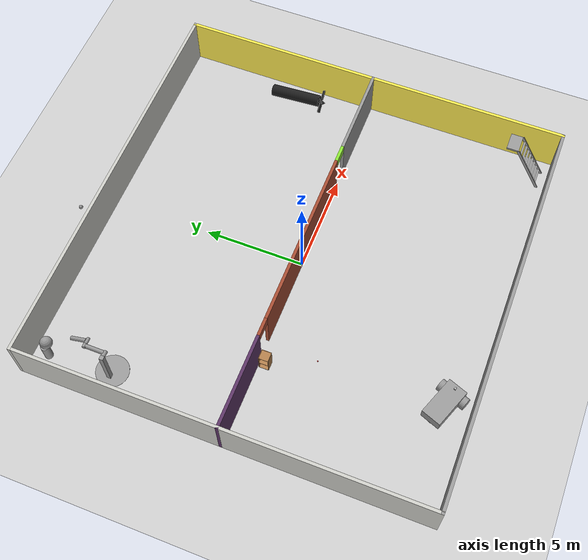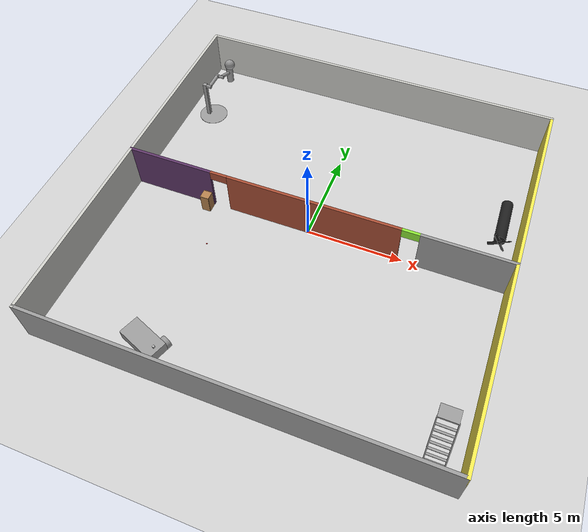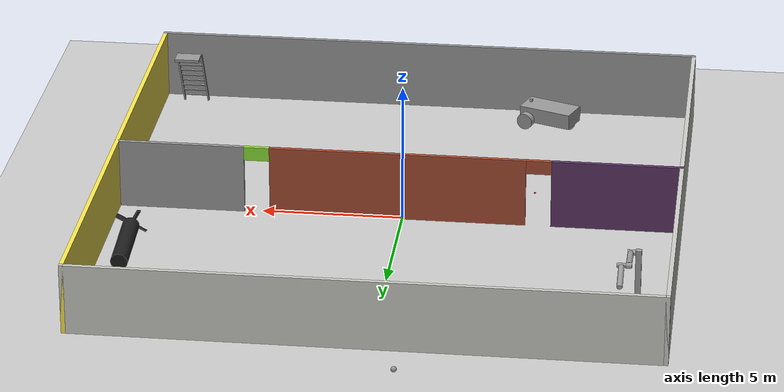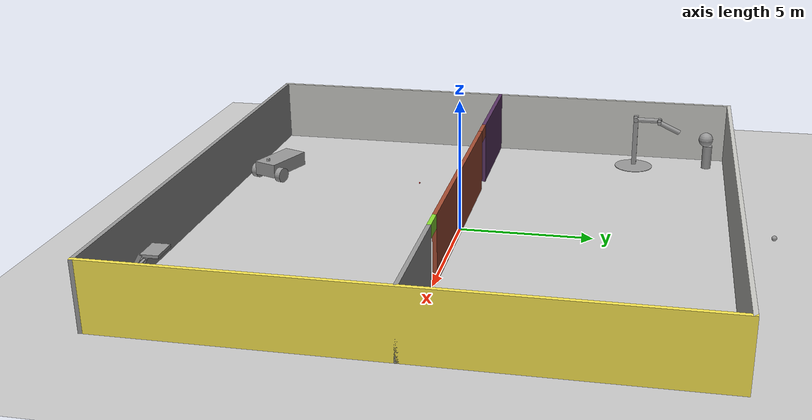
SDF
<sdf version="1.7">
 <world name="default">
  <plugin name="hello" filename="libhello.so"/>
  <light name="sun" type="directional">
   <pose>0 0 10 0 -0 0</pose>
   <diffuse>0.8 0.8 0.8 1</diffuse>
   <specular>0.2 0.2 0.2 1</specular>
   <attenuation>
    <range>1000</range>
    <constant>0.9</constant>
    <linear>0.01</linear>
    <quadratic>0.001</quadratic>
   </attenuation>
   <direction>-0.5 0.1 -0.9</direction>
   <spot><inner_angle>0</inner_angle><outer_angle>0</outer_angle><falloff>0</falloff></spot>
  </light>
  <model name="ground_plane">
   <static>1</static>
   <link name="link">
    <collision name="collision">
     <geometry><plane><normal>0 0 1</normal><size>100 100</size></plane></geometry>
     <surface>
      <contact><collide_bitmask>65535</collide_bitmask></contact>
      <friction><ode><mu>100</mu><mu2>50</mu2></ode></friction>
     </surface>
    </collision>
    <visual name="visual">
     <cast_shadows>0</cast_shadows>
     <geometry><plane><normal>0 0 1</normal><size>100 100</size></plane></geometry>
     <material>
      <script><uri>file://media/materials/scripts/gazebo.material</uri><name>Gazebo/Grey</name></script>
     </material>
    </visual>
   </link>
  </model>
  <gravity>0 0 -9.8</gravity>
  <magnetic_field>6e-06 2.3e-05 -4.2e-05</magnetic_field>
  <atmosphere type="adiabatic"/>
  <physics type="ode">
   <max_step_size>0.001</max_step_size>
   <real_time_factor>1</real_time_factor>
   <real_time_update_rate>1000</real_time_update_rate>
  </physics>
  <scene><ambient>0.4 0.4 0.4 1</ambient><background>0.7 0.7 0.7 1</background><shadows>1</shadows></scene>
  <spherical_coordinates>
   <surface_model>EARTH_WGS84</surface_model>
   <latitude_deg>0</latitude_deg>
   <longitude_deg>0</longitude_deg>
   <elevation>0</elevation>
   <heading_deg>0</heading_deg>
  </spherical_coordinates>
  <model name="globe_1">
   <link name="link_0">
    <pose>-0.05 0.05 -0.4 0 -0 0</pose>
    <inertial>
     <mass>1</mass>
     <inertia><ixx>0.145833</ixx><ixy>0</ixy><ixz>0</ixz><iyy>0.145833</iyy><iyz>0</iyz><izz>0.125</izz></inertia>
    </inertial>
    <visual name="visual">
     <geometry><cylinder><radius>0.2</radius><length>1</length></cylinder></geometry>
     <material>
      <lighting>1</lighting>
      <script><uri>file://media/materials/scripts/gazebo.material</uri><name>Gazebo/Grey</name></script>
      <shader type="pixel"><normal_map>__default__</normal_map></shader>
      <ambient>0.3 0.3 0.3 1</ambient>
      <diffuse>0.7 0.7 0.7 1</diffuse>
      <specular>0.01 0.01 0.01 1</specular>
      <emissive>0 0 0 1</emissive>
     </material>
    </visual>
    <collision name="collision">
     <geometry><cylinder><radius>0.2</radius><length>1</length></cylinder></geometry>
     <surface>
      <friction>
       <ode><mu>1</mu><mu2>1</mu2><fdir1>0 0 0</fdir1><slip1>0</slip1><slip2>0</slip2></ode>
       <torsional>
        <coefficient>1</coefficient>
        <patch_radius>0</patch_radius>
        <surface_radius>0</surface_radius>
        <use_patch_radius>1</use_patch_radius>
        <ode><slip>0</slip></ode>
       </torsional>
      </friction>
      <bounce><restitution_coefficient>0</restitution_coefficient><threshold>1e+06</threshold></bounce>
      <contact>
       <collide_without_contact>0</collide_without_contact>
       <collide_without_contact_bitmask>1</collide_without_contact_bitmask>
       <collide_bitmask>1</collide_bitmask>
       <ode>
        <soft_cfm>0</soft_cfm>
        <soft_erp>0.2</soft_erp>
        <kp>1e+13</kp>
        <kd>1</kd>
        <max_vel>0.01</max_vel>
        <min_depth>0</min_depth>
       </ode>
       <bullet>
        <split_impulse>1</split_impulse>
        <split_impulse_penetration_threshold>-0.01</split_impulse_penetration_threshold>
        <soft_cfm>0</soft_cfm>
        <soft_erp>0.2</soft_erp>
        <kp>1e+13</kp>
        <kd>1</kd>
       </bullet>
      </contact>
     </surface>
    </collision>
   </link>
   <link name="link_1">
    <pose>0.05 -0.05 0.4 0 -0 0</pose>
    <inertial>
     <mass>1</mass>
     <inertia><ixx>0.1</ixx><ixy>0</ixy><ixz>0</ixz><iyy>0.1</iyy><iyz>0</iyz><izz>0.1</izz></inertia>
    </inertial>
    <visual name="visual">
     <geometry><sphere><radius>0.3</radius></sphere></geometry>
     <material>
      <lighting>1</lighting>
      <script><uri>file://media/materials/scripts/gazebo.material</uri><name>Gazebo/Grey</name></script>
      <shader type="pixel"><normal_map>__default__</normal_map></shader>
      <ambient>0.3 0.3 0.3 1</ambient>
      <diffuse>0.7 0.7 0.7 1</diffuse>
      <specular>0.01 0.01 0.01 1</specular>
      <emissive>0 0 0 1</emissive>
     </material>
    </visual>
    <collision name="collision">
     <geometry><sphere><radius>0.3</radius></sphere></geometry>
     <surface>
      <friction>
       <ode><mu>1</mu><mu2>1</mu2><fdir1>0 0 0</fdir1><slip1>0</slip1><slip2>0</slip2></ode>
       <torsional>
        <coefficient>1</coefficient>
        <patch_radius>0</patch_radius>
        <surface_radius>0</surface_radius>
        <use_patch_radius>1</use_patch_radius>
        <ode><slip>0</slip></ode>
       </torsional>
      </friction>
      <bounce><restitution_coefficient>0</restitution_coefficient><threshold>1e+06</threshold></bounce>
      <contact>
       <collide_without_contact>0</collide_without_contact>
       <collide_without_contact_bitmask>1</collide_without_contact_bitmask>
       <collide_bitmask>1</collide_bitmask>
       <ode>
        <soft_cfm>0</soft_cfm>
        <soft_erp>0.2</soft_erp>
        <kp>1e+13</kp>
        <kd>1</kd>
        <max_vel>0.01</max_vel>
        <min_depth>0</min_depth>
       </ode>
       <bullet>
        <split_impulse>1</split_impulse>
        <split_impulse_penetration_threshold>-0.01</split_impulse_penetration_threshold>
        <soft_cfm>0</soft_cfm>
        <soft_erp>0.2</soft_erp>
        <kp>1e+13</kp>
        <kd>1</kd>
       </bullet>
      </contact>
     </surface>
    </collision>
   </link>
   <joint name="link_1_JOINT_0" type="revolute">
    <parent>link_0</parent>
    <child>link_1</child>
    <axis>
     <xyz>1 0 0</xyz>
     <limit>
      <lower>-1.79769e+308</lower>
      <upper>1.79769e+308</upper>
      <effort>-1</effort>
      <velocity>-1</velocity>
     </limit>
     <dynamics>
      <spring_reference>0</spring_reference>
      <spring_stiffness>0</spring_stiffness>
      <damping>0</damping>
      <friction>0</friction>
     </dynamics>
    </axis>
    <physics>
     <ode><limit><cfm>0</cfm><erp>0.2</erp></limit><suspension><cfm>0</cfm><erp>0.2</erp></suspension></ode>
    </physics>
   </joint>
   <static>0</static>
   <pose>-8.67619 9.18253 0.899997 0 1e-06 0.084269</pose>
  </model>
  <model name="my_ball">
   <link name="link_0">
    <inertial>
     <mass>1</mass>
     <inertia><ixx>0.1</ixx><ixy>0</ixy><ixz>0</ixz><iyy>0.1</iyy><iyz>0</iyz><izz>0.1</izz></inertia>
    </inertial>
    <visual name="visual">
     <geometry><sphere><radius>0.1</radius></sphere></geometry>
     <material>
      <lighting>1</lighting>
      <script><uri>file://media/materials/scripts/gazebo.material</uri><name>Gazebo/Grey</name></script>
      <shader type="pixel"><normal_map>__default__</normal_map></shader>
      <ambient>1 1 1 1</ambient>
      <diffuse>1 1 1 1</diffuse>
      <specular>1 1 1 1</specular>
      <emissive>1 1 1 1</emissive>
     </material>
    </visual>
    <collision name="collision">
     <geometry><sphere><radius>0.1</radius></sphere></geometry>
     <surface>
      <friction>
       <ode><mu>1</mu><mu2>1</mu2><fdir1>0 0 0</fdir1><slip1>0</slip1><slip2>0</slip2></ode>
       <torsional>
        <coefficient>1</coefficient>
        <patch_radius>0</patch_radius>
        <surface_radius>0</surface_radius>
        <use_patch_radius>1</use_patch_radius>
        <ode><slip>0</slip></ode>
       </torsional>
      </friction>
      <bounce><restitution_coefficient>0</restitution_coefficient><threshold>1e+06</threshold></bounce>
      <contact>
       <collide_without_contact>0</collide_without_contact>
       <collide_without_contact_bitmask>1</collide_without_contact_bitmask>
       <collide_bitmask>1</collide_bitmask>
       <ode>
        <soft_cfm>0</soft_cfm>
        <soft_erp>0.2</soft_erp>
        <kp>1e+13</kp>
        <kd>1</kd>
        <max_vel>0.01</max_vel>
        <min_depth>0</min_depth>
       </ode>
       <bullet>
        <split_impulse>1</split_impulse>
        <split_impulse_penetration_threshold>-0.01</split_impulse_penetration_threshold>
        <soft_cfm>0</soft_cfm>
        <soft_erp>0.2</soft_erp>
        <kp>1e+13</kp>
        <kd>1</kd>
       </bullet>
      </contact>
     </surface>
    </collision>
   </link>
   <static>0</static>
   <pose>-1.02999 11.5555 0.1 0 -0 0</pose>
  </model>
  <plugin name="collision_map_creator" filename="libcollision_map_creator.so"/>
  <model name="submarine_sinking_0">
   <pose>9.27267 2.84407 0.449064 1.44185 1.05968 -0.092307</pose>
   <link name="body">
    <pose>0 0 -1.07935 0 -0 0</pose>
    <inertial>
     <mass>1102.7</mass>
     <inertia><ixx>645.998</ixx><ixy>0</ixy><ixz>0</ixz><iyy>645.998</iyy><iyz>0</iyz><izz>49.6215</izz></inertia>
    </inertial>
    <visual name="body_visual">
     <geometry><cylinder><radius>0.3</radius><length>2.6</length></cylinder></geometry>
     <material>
      <script><uri>file://media/materials/scripts/gazebo.material</uri><name>Gazebo/Black</name></script>
     </material>
    </visual>
    <collision name="body_collision">
     <geometry><cylinder><radius>0.3</radius><length>2.6</length></cylinder></geometry>
    </collision>
    <visual name="spacer_visual">
     <pose>0 0 1.37855 0 -0 0</pose>
     <geometry><cylinder><radius>0.0933402</radius><length>0.127211</length></cylinder></geometry>
     <material>
      <script><uri>file://media/materials/scripts/gazebo.material</uri><name>Gazebo/Black</name></script>
     </material>
    </visual>
   </link>
   <link name="propeller">
    <pose>0 0 0.3455 3.14159 -0 0</pose>
    <inertial>
     <mass>25.2312</mass>
     <inertia><ixx>0.531907</ixx><ixy>0</ixy><ixz>0</ixz><iyy>0.531907</iyy><iyz>0</iyz><izz>1.0513</izz></inertia>
    </inertial>
    <visual name="blade1_visual">
     <pose>0.34334 0 0 0.785398 -0 0</pose>
     <geometry><box><size>0.5 0.154178 0.05455</size></box></geometry>
     <material>
      <script><uri>file://media/materials/scripts/gazebo.material</uri><name>Gazebo/Black</name></script>
     </material>
    </visual>
    <collision name="blade1_collision">
     <pose>0.34334 0 0 0.785398 -0 0</pose>
     <geometry><box><size>0.5 0.154178 0.05455</size></box></geometry>
    </collision>
    <visual name="blade2_visual">
     <pose>0 0.34334 0 0.785398 0 1.5708</pose>
     <geometry><box><size>0.5 0.154178 0.05455</size></box></geometry>
     <material>
      <script><uri>file://media/materials/scripts/gazebo.material</uri><name>Gazebo/Black</name></script>
     </material>
    </visual>
    <collision name="blade2_collision">
     <pose>0 0.34334 0 0.785398 0 1.5708</pose>
     <geometry><box><size>0.5 0.154178 0.05455</size></box></geometry>
    </collision>
    <visual name="blade3_visual">
     <pose>-0.34334 -0 0 -0.785398 0 0</pose>
     <geometry><box><size>0.5 0.154178 0.05455</size></box></geometry>
     <material>
      <script><uri>file://media/materials/scripts/gazebo.material</uri><name>Gazebo/Black</name></script>
     </material>
    </visual>
    <collision name="blade3_collision">
     <pose>-0.34334 -0 0 -0.785398 0 0</pose>
     <geometry><box><size>0.5 0.154178 0.05455</size></box></geometry>
    </collision>
    <visual name="blade4_visual">
     <pose>-0 -0.34334 0 -0.785398 -0 1.5708</pose>
     <geometry><box><size>0.5 0.154178 0.05455</size></box></geometry>
     <material>
      <script><uri>file://media/materials/scripts/gazebo.material</uri><name>Gazebo/Black</name></script>
     </material>
    </visual>
    <collision name="blade4_collision">
     <pose>-0 -0.34334 0 -0.785398 -0 1.5708</pose>
     <geometry><box><size>0.5 0.154178 0.05455</size></box></geometry>
    </collision>
   </link>
   <joint name="spinning_joint" type="revolute">
    <parent>body</parent>
    <child>propeller</child>
    <axis>
     <xyz expressed_in="__model__">0 0 1</xyz>
     <limit><lower>-1e+12</lower><upper>1e+12</upper><effort>-1</effort><velocity>-1</velocity></limit>
     <dynamics><spring_reference>0</spring_reference><spring_stiffness>0</spring_stiffness></dynamics>
    </axis>
   </joint>
   <plugin name="buoyancy" filename="libBuoyancyPlugin.so"><fluid_density>999.1026</fluid_density></plugin>
  </model>
  <model name="RoboCup SPL Ball">
   <static>0</static>
   <link name="ball">
    <inertial>
     <mass>0.0056</mass>
     <inertia>
      <ixx>2.37e-06</ixx>
      <iyy>2.37e-06</iyy>
      <izz>2.37e-06</izz>
      <ixy>0</ixy>
      <ixz>0</ixz>
      <iyz>0</iyz>
     </inertia>
    </inertial>
    <collision name="collision"><geometry><sphere><radius>0.0325</radius></sphere></geometry></collision>
    <visual name="visual">
     <geometry><sphere><radius>0.0325</radius></sphere></geometry>
     <material>
      <script><uri>file://media/materials/scripts/gazebo.material</uri><name>Gazebo/RedBright</name></script>
     </material>
    </visual>
   </link>
   <pose>-4.50146 -2.5425 0.0325 1.27363 -0.91598 2.94442</pose>
  </model>
  <model name="ladder_60deg_0rails">
   <static>1</static>
   <link name="step0">
    <pose>0 0.15396 0.266667 0 -0 0</pose>
    <inertial>
     <mass>9.75482</mass>
     <inertia>
      <ixx>0.00957124</ixx>
      <iyy>0.65963</iyy>
      <izz>0.666842</izz>
      <ixy>0</ixy>
      <ixz>0</ixz>
      <iyz>0</iyz>
     </inertia>
    </inertial>
    <collision name="collision"><geometry><box><size>0.9 0.1016 0.0381</size></box></geometry></collision>
    <visual name="visual">
     <geometry><box><size>0.9 0.1016 0.0381</size></box></geometry>
     <material>
      <script><uri>file://media/materials/scripts/gazebo.material</uri><name>Gazebo/Grey</name></script>
     </material>
    </visual>
   </link>
   <link name="step1">
    <pose>0 0.30792 0.533333 0 -0 0</pose>
    <inertial>
     <mass>9.75482</mass>
     <inertia>
      <ixx>0.00957124</ixx>
      <iyy>0.65963</iyy>
      <izz>0.666842</izz>
      <ixy>0</ixy>
      <ixz>0</ixz>
      <iyz>0</iyz>
     </inertia>
    </inertial>
    <collision name="collision"><geometry><box><size>0.9 0.1016 0.0381</size></box></geometry></collision>
    <visual name="visual">
     <geometry><box><size>0.9 0.1016 0.0381</size></box></geometry>
     <material>
      <script><uri>file://media/materials/scripts/gazebo.material</uri><name>Gazebo/Grey</name></script>
     </material>
    </visual>
   </link>
   <link name="step2">
    <pose>0 0.46188 0.8 0 -0 0</pose>
    <inertial>
     <mass>9.75482</mass>
     <inertia>
      <ixx>0.00957124</ixx>
      <iyy>0.65963</iyy>
      <izz>0.666842</izz>
      <ixy>0</ixy>
      <ixz>0</ixz>
      <iyz>0</iyz>
     </inertia>
    </inertial>
    <collision name="collision"><geometry><box><size>0.9 0.1016 0.0381</size></box></geometry></collision>
    <visual name="visual">
     <geometry><box><size>0.9 0.1016 0.0381</size></box></geometry>
     <material>
      <script><uri>file://media/materials/scripts/gazebo.material</uri><name>Gazebo/Grey</name></script>
     </material>
    </visual>
   </link>
   <link name="step3">
    <pose>0 0.61584 1.06667 0 -0 0</pose>
    <inertial>
     <mass>9.75482</mass>
     <inertia>
      <ixx>0.00957124</ixx>
      <iyy>0.65963</iyy>
      <izz>0.666842</izz>
      <ixy>0</ixy>
      <ixz>0</ixz>
      <iyz>0</iyz>
     </inertia>
    </inertial>
    <collision name="collision"><geometry><box><size>0.9 0.1016 0.0381</size></box></geometry></collision>
    <visual name="visual">
     <geometry><box><size>0.9 0.1016 0.0381</size></box></geometry>
     <material>
      <script><uri>file://media/materials/scripts/gazebo.material</uri><name>Gazebo/Grey</name></script>
     </material>
    </visual>
   </link>
   <link name="step4">
    <pose>0 0.7698 1.33333 0 -0 0</pose>
    <inertial>
     <mass>9.75482</mass>
     <inertia>
      <ixx>0.00957124</ixx>
      <iyy>0.65963</iyy>
      <izz>0.666842</izz>
      <ixy>0</ixy>
      <ixz>0</ixz>
      <iyz>0</iyz>
     </inertia>
    </inertial>
    <collision name="collision"><geometry><box><size>0.9 0.1016 0.0381</size></box></geometry></collision>
    <visual name="visual">
     <geometry><box><size>0.9 0.1016 0.0381</size></box></geometry>
     <material>
      <script><uri>file://media/materials/scripts/gazebo.material</uri><name>Gazebo/Grey</name></script>
     </material>
    </visual>
   </link>
   <link name="step5">
    <pose>0 0.92376 1.6 0 -0 0</pose>
    <inertial>
     <mass>9.75482</mass>
     <inertia>
      <ixx>0.00957124</ixx>
      <iyy>0.65963</iyy>
      <izz>0.666842</izz>
      <ixy>0</ixy>
      <ixz>0</ixz>
      <iyz>0</iyz>
     </inertia>
    </inertial>
    <collision name="collision"><geometry><box><size>0.9 0.1016 0.0381</size></box></geometry></collision>
    <visual name="visual">
     <geometry><box><size>0.9 0.1016 0.0381</size></box></geometry>
     <material>
      <script><uri>file://media/materials/scripts/gazebo.material</uri><name>Gazebo/Grey</name></script>
     </material>
    </visual>
   </link>
   <link name="step6">
    <pose>0 1.07772 1.86667 0 -0 0</pose>
    <inertial>
     <mass>9.75482</mass>
     <inertia>
      <ixx>0.00957124</ixx>
      <iyy>0.65963</iyy>
      <izz>0.666842</izz>
      <ixy>0</ixy>
      <ixz>0</ixz>
      <iyz>0</iyz>
     </inertia>
    </inertial>
    <collision name="collision"><geometry><box><size>0.9 0.1016 0.0381</size></box></geometry></collision>
    <visual name="visual">
     <geometry><box><size>0.9 0.1016 0.0381</size></box></geometry>
     <material>
      <script><uri>file://media/materials/scripts/gazebo.material</uri><name>Gazebo/Grey</name></script>
     </material>
    </visual>
   </link>
   <link name="step7">
    <pose>0 1.23168 2.13333 0 -0 0</pose>
    <inertial>
     <mass>9.75482</mass>
     <inertia>
      <ixx>0.00957124</ixx>
      <iyy>0.65963</iyy>
      <izz>0.666842</izz>
      <ixy>0</ixy>
      <ixz>0</ixz>
      <iyz>0</iyz>
     </inertia>
    </inertial>
    <collision name="collision"><geometry><box><size>0.9 0.1016 0.0381</size></box></geometry></collision>
    <visual name="visual">
     <geometry><box><size>0.9 0.1016 0.0381</size></box></geometry>
     <material>
      <script><uri>file://media/materials/scripts/gazebo.material</uri><name>Gazebo/Grey</name></script>
     </material>
    </visual>
   </link>
   <link name="landing">
    <pose>0 1.68564 2.4 0 -0 0</pose>
    <inertial>
     <mass>57.6072</mass>
     <inertia><ixx>1.73518</ixx><iyy>3.89545</iyy><izz>5.6167</izz><ixy>0</ixy><ixz>0</ixz><iyz>0</iyz></inertia>
    </inertial>
    <collision name="collision"><geometry><box><size>0.9 0.6 0.1016</size></box></geometry></collision>
    <visual name="visual">
     <geometry><box><size>0.9 0.6 0.1016</size></box></geometry>
     <material>
      <script><uri>file://media/materials/scripts/gazebo.material</uri><name>Gazebo/Grey</name></script>
     </material>
    </visual>
   </link>
   <link name="left_side_wall">
    <pose>-0.45 0.69282 1.2 1.0472 -0 0</pose>
    <collision name="collision"><geometry><box><size>0.0508 2.85128 0.13</size></box></geometry></collision>
    <visual name="visual">
     <geometry><box><size>0.0508 2.85128 0.13</size></box></geometry>
     <material>
      <script><uri>file://media/materials/scripts/gazebo.material</uri><name>Gazebo/Grey</name></script>
     </material>
    </visual>
   </link>
   <link name="right_side_wall">
    <pose>0.45 0.69282 1.2 1.0472 -0 0</pose>
    <collision name="collision"><geometry><box><size>0.0508 2.85128 0.13</size></box></geometry></collision>
    <visual name="visual">
     <geometry><box><size>0.0508 2.85128 0.13</size></box></geometry>
     <material>
      <script><uri>file://media/materials/scripts/gazebo.material</uri><name>Gazebo/Grey</name></script>
     </material>
    </visual>
   </link>
   <pose>8.97683 -9.518 0 0 -0 0</pose>
  </model>
  <model name="building">
   <link name="Wall_10">
    <pose>0 10 0 0 -0 0</pose>
    <inertial>
     <mass>1</mass>
     <inertia><ixx>1</ixx><ixy>0</ixy><ixz>0</ixz><iyy>1</iyy><iyz>0</iyz><izz>1</izz></inertia>
    </inertial>
    <visual name="Wall_10_Visual">
     <pose>0 0 1.25 0 -0 0</pose>
     <geometry><box><size>20.15 0.15 2.5</size></box></geometry>
     <material>
      <script><uri>file://media/materials/scripts/gazebo.material</uri><name>Gazebo/CeilingTiled</name></script>
      <ambient>0.937 0.161 0.161 1</ambient>
      <shader type="pixel"><normal_map>__default__</normal_map></shader>
      <diffuse>1 1 1 1</diffuse>
      <specular>0 0 0 1</specular>
      <emissive>0 0 0 1</emissive>
     </material>
     <meta><layer>0</layer></meta>
    </visual>
    <collision name="Wall_10_Collision">
     <pose>0 0 1.25 0 -0 0</pose>
     <geometry><box><size>20.15 0.15 2.5</size></box></geometry>
     <surface>
      <friction>
       <ode><mu>1</mu><mu2>1</mu2><fdir1>0 0 0</fdir1><slip1>0</slip1><slip2>0</slip2></ode>
       <torsional>
        <coefficient>1</coefficient>
        <patch_radius>0</patch_radius>
        <surface_radius>0</surface_radius>
        <use_patch_radius>1</use_patch_radius>
        <ode><slip>0</slip></ode>
       </torsional>
      </friction>
      <bounce><restitution_coefficient>0</restitution_coefficient><threshold>1e+06</threshold></bounce>
      <contact>
       <collide_without_contact>0</collide_without_contact>
       <collide_without_contact_bitmask>1</collide_without_contact_bitmask>
       <collide_bitmask>1</collide_bitmask>
       <ode>
        <soft_cfm>0</soft_cfm>
        <soft_erp>0.2</soft_erp>
        <kp>1e+13</kp>
        <kd>1</kd>
        <max_vel>0.01</max_vel>
        <min_depth>0</min_depth>
       </ode>
       <bullet>
        <split_impulse>1</split_impulse>
        <split_impulse_penetration_threshold>-0.01</split_impulse_penetration_threshold>
        <soft_cfm>0</soft_cfm>
        <soft_erp>0.2</soft_erp>
        <kp>1e+13</kp>
        <kd>1</kd>
       </bullet>
      </contact>
     </surface>
    </collision>
   </link>
   <link name="Wall_2">
    <inertial>
     <mass>1</mass>
     <inertia><ixx>1</ixx><ixy>0</ixy><ixz>0</ixz><iyy>1</iyy><iyz>0</iyz><izz>1</izz></inertia>
    </inertial>
    <visual name="Wall_2_Visual_0">
     <pose>-7.7625 0 1.25 0 -0 0</pose>
     <geometry><box><size>4.625 0.15 2.5</size></box></geometry>
     <material>
      <script><uri>file://media/materials/scripts/gazebo.material</uri><name>Gazebo/Grey</name></script>
      <ambient>0.361 0.208 0.4 1</ambient>
      <shader type="pixel"><normal_map>__default__</normal_map></shader>
      <diffuse>1 1 1 1</diffuse>
      <specular>0.2 0.2 0.2 1</specular>
      <emissive>0 0 0 1</emissive>
     </material>
     <meta><layer>0</layer></meta>
    </visual>
    <visual name="Wall_2_Visual_2">
     <pose>7.7625 0 1.25 0 -0 0</pose>
     <geometry><box><size>4.625 0.15 2.5</size></box></geometry>
     <material>
      <script><uri>file://media/materials/scripts/gazebo.material</uri><name>Gazebo/Grey</name></script>
      <ambient>1 1 1 1</ambient>
      <shader type="pixel"><normal_map>__default__</normal_map></shader>
      <diffuse>1 1 1 1</diffuse>
      <specular>0.2 0.2 0.2 1</specular>
      <emissive>0 0 0 1</emissive>
     </material>
     <meta><layer>0</layer></meta>
    </visual>
    <visual name="Wall_2_Visual_1">
     <pose>0 0 1.25 0 -0 0</pose>
     <geometry><box><size>9.1 0.15 2.5</size></box></geometry>
     <material>
      <script><uri>file://media/materials/scripts/gazebo.material</uri><name>Gazebo/Bricks</name></script>
      <ambient>0.996 0.475 0.02 1</ambient>
      <shader type="pixel"><normal_map>__default__</normal_map></shader>
      <diffuse>1 1 1 1</diffuse>
      <specular>0.2 0.2 0.2 1</specular>
      <emissive>0 0 0 1</emissive>
     </material>
     <meta><layer>0</layer></meta>
    </visual>
    <visual name="Wall_2_Visual_3">
     <pose>-5 0 2.25 0 -0 0</pose>
     <geometry><box><size>0.9 0.15 0.5</size></box></geometry>
     <material>
      <script><uri>file://media/materials/scripts/gazebo.material</uri><name>Gazebo/Bricks</name></script>
      <ambient>0.18 0.204 0.212 1</ambient>
      <shader type="pixel"><normal_map>__default__</normal_map></shader>
      <diffuse>1 1 1 1</diffuse>
      <specular>0.2 0.2 0.2 1</specular>
      <emissive>0 0 0 1</emissive>
     </material>
     <meta><layer>0</layer></meta>
    </visual>
    <visual name="Wall_2_Visual_4">
     <pose>5 0 2.25 0 -0 0</pose>
     <geometry><box><size>0.9 0.15 0.5</size></box></geometry>
     <material>
      <script><uri>file://media/materials/scripts/gazebo.material</uri><name>Gazebo/Grey</name></script>
      <ambient>0.541 0.886 0.204 1</ambient>
      <shader type="pixel"><normal_map>__default__</normal_map></shader>
      <diffuse>0.7 0.7 0.7 1</diffuse>
      <specular>0.01 0.01 0.01 1</specular>
      <emissive>0 0 0 1</emissive>
     </material>
     <meta><layer>0</layer></meta>
    </visual>
    <collision name="Wall_2_Collision_0">
     <pose>-7.7625 0 1.25 0 -0 0</pose>
     <geometry><box><size>4.625 0.15 2.5</size></box></geometry>
     <surface>
      <friction>
       <ode><mu>1</mu><mu2>1</mu2><fdir1>0 0 0</fdir1><slip1>0</slip1><slip2>0</slip2></ode>
       <torsional>
        <coefficient>1</coefficient>
        <patch_radius>0</patch_radius>
        <surface_radius>0</surface_radius>
        <use_patch_radius>1</use_patch_radius>
        <ode><slip>0</slip></ode>
       </torsional>
      </friction>
      <bounce><restitution_coefficient>0</restitution_coefficient><threshold>1e+06</threshold></bounce>
      <contact>
       <collide_without_contact>0</collide_without_contact>
       <collide_without_contact_bitmask>1</collide_without_contact_bitmask>
       <collide_bitmask>1</collide_bitmask>
       <ode>
        <soft_cfm>0</soft_cfm>
        <soft_erp>0.2</soft_erp>
        <kp>1e+13</kp>
        <kd>1</kd>
        <max_vel>0.01</max_vel>
        <min_depth>0</min_depth>
       </ode>
       <bullet>
        <split_impulse>1</split_impulse>
        <split_impulse_penetration_threshold>-0.01</split_impulse_penetration_threshold>
        <soft_cfm>0</soft_cfm>
        <soft_erp>0.2</soft_erp>
        <kp>1e+13</kp>
        <kd>1</kd>
       </bullet>
      </contact>
     </surface>
    </collision>
    <collision name="Wall_2_Collision_1">
     <pose>0 0 1.25 0 -0 0</pose>
     <geometry><box><size>9.1 0.15 2.5</size></box></geometry>
     <surface>
      <friction>
       <ode><mu>1</mu><mu2>1</mu2><fdir1>0 0 0</fdir1><slip1>0</slip1><slip2>0</slip2></ode>
       <torsional>
        <coefficient>1</coefficient>
        <patch_radius>0</patch_radius>
        <surface_radius>0</surface_radius>
        <use_patch_radius>1</use_patch_radius>
        <ode><slip>0</slip></ode>
       </torsional>
      </friction>
      <bounce><restitution_coefficient>0</restitution_coefficient><threshold>1e+06</threshold></bounce>
      <contact>
       <collide_without_contact>0</collide_without_contact>
       <collide_without_contact_bitmask>1</collide_without_contact_bitmask>
       <collide_bitmask>1</collide_bitmask>
       <ode>
        <soft_cfm>0</soft_cfm>
        <soft_erp>0.2</soft_erp>
        <kp>1e+13</kp>
        <kd>1</kd>
        <max_vel>0.01</max_vel>
        <min_depth>0</min_depth>
       </ode>
       <bullet>
        <split_impulse>1</split_impulse>
        <split_impulse_penetration_threshold>-0.01</split_impulse_penetration_threshold>
        <soft_cfm>0</soft_cfm>
        <soft_erp>0.2</soft_erp>
        <kp>1e+13</kp>
        <kd>1</kd>
       </bullet>
      </contact>
     </surface>
    </collision>
    <collision name="Wall_2_Collision_3">
     <pose>-5 0 2.25 0 -0 0</pose>
     <geometry><box><size>0.9 0.15 0.5</size></box></geometry>
     <surface>
      <friction>
       <ode><mu>1</mu><mu2>1</mu2><fdir1>0 0 0</fdir1><slip1>0</slip1><slip2>0</slip2></ode>
       <torsional>
        <coefficient>1</coefficient>
        <patch_radius>0</patch_radius>
        <surface_radius>0</surface_radius>
        <use_patch_radius>1</use_patch_radius>
        <ode><slip>0</slip></ode>
       </torsional>
      </friction>
      <bounce><restitution_coefficient>0</restitution_coefficient><threshold>1e+06</threshold></bounce>
      <contact>
       <collide_without_contact>0</collide_without_contact>
       <collide_without_contact_bitmask>1</collide_without_contact_bitmask>
       <collide_bitmask>1</collide_bitmask>
       <ode>
        <soft_cfm>0</soft_cfm>
        <soft_erp>0.2</soft_erp>
        <kp>1e+13</kp>
        <kd>1</kd>
        <max_vel>0.01</max_vel>
        <min_depth>0</min_depth>
       </ode>
       <bullet>
        <split_impulse>1</split_impulse>
        <split_impulse_penetration_threshold>-0.01</split_impulse_penetration_threshold>
        <soft_cfm>0</soft_cfm>
        <soft_erp>0.2</soft_erp>
        <kp>1e+13</kp>
        <kd>1</kd>
       </bullet>
      </contact>
     </surface>
    </collision>
    <collision name="Wall_2_Collision_2">
     <pose>7.7625 0 1.25 0 -0 0</pose>
     <geometry><box><size>4.625 0.15 2.5</size></box></geometry>
     <surface>
      <friction>
       <ode><mu>1</mu><mu2>1</mu2><fdir1>0 0 0</fdir1><slip1>0</slip1><slip2>0</slip2></ode>
       <torsional>
        <coefficient>1</coefficient>
        <patch_radius>0</patch_radius>
        <surface_radius>0</surface_radius>
        <use_patch_radius>1</use_patch_radius>
        <ode><slip>0</slip></ode>
       </torsional>
      </friction>
      <bounce><restitution_coefficient>0</restitution_coefficient><threshold>1e+06</threshold></bounce>
      <contact>
       <collide_without_contact>0</collide_without_contact>
       <collide_without_contact_bitmask>1</collide_without_contact_bitmask>
       <collide_bitmask>1</collide_bitmask>
       <ode>
        <soft_cfm>0</soft_cfm>
        <soft_erp>0.2</soft_erp>
        <kp>1e+13</kp>
        <kd>1</kd>
        <max_vel>0.01</max_vel>
        <min_depth>0</min_depth>
       </ode>
       <bullet>
        <split_impulse>1</split_impulse>
        <split_impulse_penetration_threshold>-0.01</split_impulse_penetration_threshold>
        <soft_cfm>0</soft_cfm>
        <soft_erp>0.2</soft_erp>
        <kp>1e+13</kp>
        <kd>1</kd>
       </bullet>
      </contact>
     </surface>
    </collision>
    <collision name="Wall_2_Collision_4">
     <pose>5 0 2.25 0 -0 0</pose>
     <geometry><box><size>0.9 0.15 0.5</size></box></geometry>
     <surface>
      <friction>
       <ode><mu>1</mu><mu2>1</mu2><fdir1>0 0 0</fdir1><slip1>0</slip1><slip2>0</slip2></ode>
       <torsional>
        <coefficient>1</coefficient>
        <patch_radius>0</patch_radius>
        <surface_radius>0</surface_radius>
        <use_patch_radius>1</use_patch_radius>
        <ode><slip>0</slip></ode>
       </torsional>
      </friction>
      <bounce><restitution_coefficient>0</restitution_coefficient><threshold>1e+06</threshold></bounce>
      <contact>
       <collide_without_contact>0</collide_without_contact>
       <collide_without_contact_bitmask>1</collide_without_contact_bitmask>
       <collide_bitmask>1</collide_bitmask>
       <ode>
        <soft_cfm>0</soft_cfm>
        <soft_erp>0.2</soft_erp>
        <kp>1e+13</kp>
        <kd>1</kd>
        <max_vel>0.01</max_vel>
        <min_depth>0</min_depth>
       </ode>
       <bullet>
        <split_impulse>1</split_impulse>
        <split_impulse_penetration_threshold>-0.01</split_impulse_penetration_threshold>
        <soft_cfm>0</soft_cfm>
        <soft_erp>0.2</soft_erp>
        <kp>1e+13</kp>
        <kd>1</kd>
       </bullet>
      </contact>
     </surface>
    </collision>
   </link>
   <link name="Wall_4">
    <pose>-10 0 0 0 0 -1.5708</pose>
    <inertial>
     <mass>1</mass>
     <inertia><ixx>1</ixx><ixy>0</ixy><ixz>0</ixz><iyy>1</iyy><iyz>0</iyz><izz>1</izz></inertia>
    </inertial>
    <visual name="Wall_4_Visual">
     <pose>0 0 1.25 0 -0 0</pose>
     <geometry><box><size>20.15 0.15 2.5</size></box></geometry>
     <material>
      <script><uri>file://media/materials/scripts/gazebo.material</uri><name>Gazebo/CeilingTiled</name></script>
      <ambient>0.125 0.29 0.529 1</ambient>
      <shader type="pixel"><normal_map>__default__</normal_map></shader>
      <diffuse>1 1 1 1</diffuse>
      <specular>0 0 0 1</specular>
      <emissive>0 0 0 1</emissive>
     </material>
     <meta><layer>0</layer></meta>
    </visual>
    <collision name="Wall_4_Collision">
     <pose>0 0 1.25 0 -0 0</pose>
     <geometry><box><size>20.15 0.15 2.5</size></box></geometry>
     <surface>
      <friction>
       <ode><mu>1</mu><mu2>1</mu2><fdir1>0 0 0</fdir1><slip1>0</slip1><slip2>0</slip2></ode>
       <torsional>
        <coefficient>1</coefficient>
        <patch_radius>0</patch_radius>
        <surface_radius>0</surface_radius>
        <use_patch_radius>1</use_patch_radius>
        <ode><slip>0</slip></ode>
       </torsional>
      </friction>
      <bounce><restitution_coefficient>0</restitution_coefficient><threshold>1e+06</threshold></bounce>
      <contact>
       <collide_without_contact>0</collide_without_contact>
       <collide_without_contact_bitmask>1</collide_without_contact_bitmask>
       <collide_bitmask>1</collide_bitmask>
       <ode>
        <soft_cfm>0</soft_cfm>
        <soft_erp>0.2</soft_erp>
        <kp>1e+13</kp>
        <kd>1</kd>
        <max_vel>0.01</max_vel>
        <min_depth>0</min_depth>
       </ode>
       <bullet>
        <split_impulse>1</split_impulse>
        <split_impulse_penetration_threshold>-0.01</split_impulse_penetration_threshold>
        <soft_cfm>0</soft_cfm>
        <soft_erp>0.2</soft_erp>
        <kp>1e+13</kp>
        <kd>1</kd>
       </bullet>
      </contact>
     </surface>
    </collision>
   </link>
   <link name="Wall_6">
    <pose>10 0 0 0 0 -1.5708</pose>
    <inertial>
     <mass>1</mass>
     <inertia><ixx>1</ixx><ixy>0</ixy><ixz>0</ixz><iyy>1</iyy><iyz>0</iyz><izz>1</izz></inertia>
    </inertial>
    <visual name="Wall_6_Visual">
     <pose>0 0 1.25 0 -0 0</pose>
     <geometry><box><size>20.15 0.15 2.5</size></box></geometry>
     <material>
      <script><uri>file://media/materials/scripts/gazebo.material</uri><name>Gazebo/Grey</name></script>
      <ambient>0.988 0.914 0.31 1</ambient>
      <shader type="pixel"><normal_map>__default__</normal_map></shader>
      <diffuse>0.7 0.7 0.7 1</diffuse>
      <specular>0.01 0.01 0.01 1</specular>
      <emissive>0 0 0 1</emissive>
     </material>
     <meta><layer>0</layer></meta>
    </visual>
    <collision name="Wall_6_Collision">
     <pose>0 0 1.25 0 -0 0</pose>
     <geometry><box><size>20.15 0.15 2.5</size></box></geometry>
     <surface>
      <friction>
       <ode><mu>1</mu><mu2>1</mu2><fdir1>0 0 0</fdir1><slip1>0</slip1><slip2>0</slip2></ode>
       <torsional>
        <coefficient>1</coefficient>
        <patch_radius>0</patch_radius>
        <surface_radius>0</surface_radius>
        <use_patch_radius>1</use_patch_radius>
        <ode><slip>0</slip></ode>
       </torsional>
      </friction>
      <bounce><restitution_coefficient>0</restitution_coefficient><threshold>1e+06</threshold></bounce>
      <contact>
       <collide_without_contact>0</collide_without_contact>
       <collide_without_contact_bitmask>1</collide_without_contact_bitmask>
       <collide_bitmask>1</collide_bitmask>
       <ode>
        <soft_cfm>0</soft_cfm>
        <soft_erp>0.2</soft_erp>
        <kp>1e+13</kp>
        <kd>1</kd>
        <max_vel>0.01</max_vel>
        <min_depth>0</min_depth>
       </ode>
       <bullet>
        <split_impulse>1</split_impulse>
        <split_impulse_penetration_threshold>-0.01</split_impulse_penetration_threshold>
        <soft_cfm>0</soft_cfm>
        <soft_erp>0.2</soft_erp>
        <kp>1e+13</kp>
        <kd>1</kd>
       </bullet>
      </contact>
     </surface>
    </collision>
   </link>
   <link name="Wall_8">
    <pose>0 -10 0 0 -0 0</pose>
    <inertial>
     <mass>1</mass>
     <inertia><ixx>1</ixx><ixy>0</ixy><ixz>0</ixz><iyy>1</iyy><iyz>0</iyz><izz>1</izz></inertia>
    </inertial>
    <visual name="Wall_8_Visual">
     <pose>0 0 1.25 0 -0 0</pose>
     <geometry><box><size>20.15 0.15 2.5</size></box></geometry>
     <material>
      <script><uri>file://media/materials/scripts/gazebo.material</uri><name>Gazebo/Grey</name></script>
      <ambient>0 0 0 1</ambient>
      <shader type="pixel"><normal_map>__default__</normal_map></shader>
      <diffuse>0.7 0.7 0.7 1</diffuse>
      <specular>0.01 0.01 0.01 1</specular>
      <emissive>0 0 0 1</emissive>
     </material>
     <meta><layer>0</layer></meta>
    </visual>
    <collision name="Wall_8_Collision">
     <pose>0 0 1.25 0 -0 0</pose>
     <geometry><box><size>20.15 0.15 2.5</size></box></geometry>
     <surface>
      <friction>
       <ode><mu>1</mu><mu2>1</mu2><fdir1>0 0 0</fdir1><slip1>0</slip1><slip2>0</slip2></ode>
       <torsional>
        <coefficient>1</coefficient>
        <patch_radius>0</patch_radius>
        <surface_radius>0</surface_radius>
        <use_patch_radius>1</use_patch_radius>
        <ode><slip>0</slip></ode>
       </torsional>
      </friction>
      <bounce><restitution_coefficient>0</restitution_coefficient><threshold>1e+06</threshold></bounce>
      <contact>
       <collide_without_contact>0</collide_without_contact>
       <collide_without_contact_bitmask>1</collide_without_contact_bitmask>
       <collide_bitmask>1</collide_bitmask>
       <ode>
        <soft_cfm>0</soft_cfm>
        <soft_erp>0.2</soft_erp>
        <kp>1e+13</kp>
        <kd>1</kd>
        <max_vel>0.01</max_vel>
        <min_depth>0</min_depth>
       </ode>
       <bullet>
        <split_impulse>1</split_impulse>
        <split_impulse_penetration_threshold>-0.01</split_impulse_penetration_threshold>
        <soft_cfm>0</soft_cfm>
        <soft_erp>0.2</soft_erp>
        <kp>1e+13</kp>
        <kd>1</kd>
       </bullet>
      </contact>
     </surface>
    </collision>
   </link>
   <static>1</static>
   <pose>0.191508 0.0342 0 0 -0 0</pose>
  </model>
  <model name="follower_vehicle">
   <pose>-4.41895 -8.67134 0.325004 0 -1.5e-05 -0.361591</pose>
   <link name="chassis">
    <pose>-0.151427 -0 0.175 0 -0 0</pose>
    <inertial>
     <mass>1.14395</mass>
     <inertia>
      <ixx>0.126164</ixx>
      <ixy>0</ixy>
      <ixz>0</ixz>
      <iyy>0.416519</iyy>
      <iyz>0</iyz>
      <izz>0.481014</izz>
     </inertia>
    </inertial>
    <visual name="visual">
     <geometry><box><size>2.01142 1 0.568726</size></box></geometry>
     <material>
      <script><uri>file://media/materials/scripts/gazebo.material</uri><name>Gazebo/Grey</name></script>
     </material>
    </visual>
    <collision name="collision">
     <geometry><box><size>2.01142 1 0.568726</size></box></geometry>
     <surface>
      <friction><ode><mu>1</mu><mu2>1</mu2><fdir1>0 0 0</fdir1><slip1>0</slip1><slip2>0</slip2></ode></friction>
      <bounce><restitution_coefficient>0</restitution_coefficient><threshold>1e+06</threshold></bounce>
      <contact>
       <collide_without_contact>0</collide_without_contact>
       <collide_without_contact_bitmask>1</collide_without_contact_bitmask>
       <collide_bitmask>1</collide_bitmask>
       <ode>
        <soft_cfm>0</soft_cfm>
        <soft_erp>0.2</soft_erp>
        <kp>1e+13</kp>
        <kd>1</kd>
        <max_vel>0.01</max_vel>
        <min_depth>0</min_depth>
       </ode>
      </contact>
     </surface>
    </collision>
   </link>
   <link name="wheel_1">
    <pose>0.554283 0.625029 -0.025 1.5707 -0 0</pose>
    <inertial>
     <mass>2</mass>
     <inertia><ixx>0.145833</ixx><ixy>0</ixy><ixz>0</ixz><iyy>0.145833</iyy><iyz>0</iyz><izz>0.125</izz></inertia>
    </inertial>
    <visual name="visual">
     <geometry><cylinder><radius>0.3</radius><length>0.25</length></cylinder></geometry>
     <material>
      <script><uri>file://media/materials/scripts/gazebo.material</uri><name>Gazebo/Grey</name></script>
     </material>
    </visual>
    <collision name="collision">
     <geometry><cylinder><radius>0.3</radius><length>0.25</length></cylinder></geometry>
     <surface>
      <friction><ode><mu>1</mu><mu2>1</mu2><fdir1>0 0 0</fdir1><slip1>0</slip1><slip2>0</slip2></ode></friction>
      <bounce><restitution_coefficient>0</restitution_coefficient><threshold>1e+06</threshold></bounce>
      <contact>
       <collide_without_contact>0</collide_without_contact>
       <collide_without_contact_bitmask>1</collide_without_contact_bitmask>
       <collide_bitmask>1</collide_bitmask>
       <ode>
        <soft_cfm>0</soft_cfm>
        <soft_erp>0.2</soft_erp>
        <kp>1e+13</kp>
        <kd>1</kd>
        <max_vel>0.01</max_vel>
        <min_depth>0</min_depth>
       </ode>
      </contact>
     </surface>
    </collision>
   </link>
   <link name="wheel_2">
    <pose>0.554282 -0.625029 -0.025 1.5707 -0 0</pose>
    <inertial>
     <mass>2</mass>
     <inertia><ixx>0.145833</ixx><ixy>0</ixy><ixz>0</ixz><iyy>0.145833</iyy><iyz>0</iyz><izz>0.125</izz></inertia>
    </inertial>
    <visual name="visual">
     <geometry><cylinder><radius>0.3</radius><length>0.25</length></cylinder></geometry>
     <material>
      <script><uri>file://media/materials/scripts/gazebo.material</uri><name>Gazebo/Grey</name></script>
     </material>
    </visual>
    <collision name="collision">
     <geometry><cylinder><radius>0.3</radius><length>0.25</length></cylinder></geometry>
     <surface>
      <friction><ode><mu>1</mu><mu2>1</mu2><fdir1>0 0 0</fdir1><slip1>0</slip1><slip2>0</slip2></ode></friction>
      <bounce><restitution_coefficient>0</restitution_coefficient><threshold>1e+06</threshold></bounce>
      <contact>
       <collide_without_contact>0</collide_without_contact>
       <collide_without_contact_bitmask>1</collide_without_contact_bitmask>
       <collide_bitmask>1</collide_bitmask>
       <ode>
        <soft_cfm>0</soft_cfm>
        <soft_erp>0.2</soft_erp>
        <kp>1e+13</kp>
        <kd>1</kd>
        <max_vel>0.01</max_vel>
        <min_depth>0</min_depth>
       </ode>
      </contact>
     </surface>
    </collision>
   </link>
   <link name="caster">
    <pose>-0.957138 -0 -0.125 0 -0 0</pose>
    <inertial>
     <mass>1</mass>
     <inertia><ixx>0.1</ixx><ixy>0</ixy><ixz>0</ixz><iyy>0.1</iyy><iyz>0</iyz><izz>0.1</izz></inertia>
    </inertial>
    <visual name="visual">
     <geometry><sphere><radius>0.2</radius></sphere></geometry>
     <material>
      <script><uri>file://media/materials/scripts/gazebo.material</uri><name>Gazebo/Grey</name></script>
     </material>
    </visual>
    <collision name="collision">
     <geometry><sphere><radius>0.2</radius></sphere></geometry>
     <surface>
      <friction><ode><mu>1</mu><mu2>1</mu2><fdir1>0 0 0</fdir1><slip1>0</slip1><slip2>0</slip2></ode></friction>
      <bounce><restitution_coefficient>0</restitution_coefficient><threshold>1e+06</threshold></bounce>
      <contact>
       <collide_without_contact>0</collide_without_contact>
       <collide_without_contact_bitmask>1</collide_without_contact_bitmask>
       <collide_bitmask>1</collide_bitmask>
       <ode>
        <soft_cfm>0</soft_cfm>
        <soft_erp>0.2</soft_erp>
        <kp>1e+13</kp>
        <kd>1</kd>
        <max_vel>0.01</max_vel>
        <min_depth>0</min_depth>
       </ode>
      </contact>
     </surface>
    </collision>
   </link>
   <model name="depth_camera">
    <link name="link">
     <pose>0.05 0.05 0.05 0 -0 0</pose>
     <inertial>
      <mass>0.1</mass>
      <inertia>
       <ixx>0.000166667</ixx>
       <iyy>0.000166667</iyy>
       <izz>0.000166667</izz>
       <ixy>0</ixy>
       <ixz>0</ixz>
       <iyz>0</iyz>
      </inertia>
     </inertial>
     <collision name="collision"><geometry><box><size>0.1 0.1 0.1</size></box></geometry></collision>
     <visual name="visual"><geometry><box><size>0.1 0.1 0.1</size></box></geometry></visual>
     <sensor name="camera" type="depth">
      <camera name="depth">
       <horizontal_fov>1.047</horizontal_fov>
       <image><width>320</width><height>240</height></image>
       <clip><near>0.1</near><far>100</far></clip>
      </camera>
      <always_on>1</always_on>
      <update_rate>30</update_rate>
      <visualize>1</visualize>
     </sensor>
    </link>
    <pose>0.569632 -0.03223 0.502056 0 -0 0</pose>
   </model>
   <joint name="chassis_wheel_1_revolute" type="revolute">
    <parent>chassis</parent>
    <child>wheel_1</child>
    <axis>
     <xyz>0 0 1</xyz>
     <limit>
      <lower>-1.79769e+308</lower>
      <upper>1.79769e+308</upper>
      <effort>-1</effort>
      <velocity>-1</velocity>
     </limit>
     <dynamics>
      <spring_reference>0</spring_reference>
      <spring_stiffness>0</spring_stiffness>
      <damping>0</damping>
      <friction>0</friction>
     </dynamics>
    </axis>
    <physics>
     <ode><limit><cfm>0</cfm><erp>0.2</erp></limit><suspension><cfm>0</cfm><erp>0.2</erp></suspension></ode>
    </physics>
   </joint>
   <joint name="chassis_wheel_2_revolute" type="revolute">
    <parent>chassis</parent>
    <child>wheel_2</child>
    <axis>
     <xyz>0 0 1</xyz>
     <limit>
      <lower>-1.79769e+308</lower>
      <upper>1.79769e+308</upper>
      <effort>-1</effort>
      <velocity>-1</velocity>
     </limit>
     <dynamics>
      <spring_reference>0</spring_reference>
      <spring_stiffness>0</spring_stiffness>
      <damping>0</damping>
      <friction>0</friction>
     </dynamics>
    </axis>
    <physics>
     <ode><limit><cfm>0</cfm><erp>0.2</erp></limit><suspension><cfm>0</cfm><erp>0.2</erp></suspension></ode>
    </physics>
   </joint>
   <joint name="chassis_caster_ball" type="ball">
    <parent>chassis</parent>
    <child>caster</child>
    <physics>
     <ode><limit><cfm>0</cfm><erp>0.2</erp></limit><suspension><cfm>0</cfm><erp>0.2</erp></suspension></ode>
    </physics>
   </joint>
   <joint name="chassis_depth_camera_link_fixed" type="fixed">
    <parent>chassis</parent>
    <child>depth_camera::link</child>
    <physics>
     <ode><limit><cfm>0</cfm><erp>0.2</erp></limit><suspension><cfm>0</cfm><erp>0.2</erp></suspension></ode>
    </physics>
   </joint>
   <static>0</static>
   <plugin name="follower" filename="libFollowerPlugin.so"/>
  </model>
  <model name="cabinet">
   <static>1</static>
   <link name="cabinet_bottom_plate">
    <inertial>
     <pose>0 0 -1 0 -0 0</pose>
     <inertia><ixx>2.05</ixx><ixy>0</ixy><ixz>0</ixz><iyy>2.05</iyy><iyz>0</iyz><izz>2.05</izz></inertia>
     <mass>25</mass>
    </inertial>
    <collision name="cabinet_bottom_plate_geom">
     <pose>0 0 0.01 0 -0 0</pose>
     <geometry><box><size>0.45 0.45 0.02</size></box></geometry>
    </collision>
    <visual name="cabinet_bottom_plate_geom_visual">
     <pose>0 0 0.01 0 -0 0</pose>
     <geometry><box><size>0.45 0.45 0.02</size></box></geometry>
     <material>
      <script><uri>file://media/materials/scripts/gazebo.material</uri><name>Gazebo/Wood</name></script>
     </material>
    </visual>
    <collision name="cabinet_bottom_plate_geom_cabinet_back_plate">
     <pose>0.235 0 0.51 0 -0 0</pose>
     <geometry><box><size>0.02 0.45 1.02</size></box></geometry>
    </collision>
    <visual name="cabinet_bottom_plate_geom_cabinet_back_plate_visual">
     <pose>0.235 0 0.51 0 -0 0</pose>
     <geometry><box><size>0.02 0.45 1.02</size></box></geometry>
     <material>
      <script><uri>file://media/materials/scripts/gazebo.material</uri><name>Gazebo/Wood</name></script>
     </material>
    </visual>
    <collision name="cabinet_bottom_plate_geom_cabinet_left_plate">
     <pose>0 0.235 0.51 0 -0 0</pose>
     <geometry><box><size>0.45 0.02 1.02</size></box></geometry>
    </collision>
    <visual name="cabinet_bottom_plate_geom_cabinet_left_plate_visual">
     <pose>0 0.235 0.51 0 -0 0</pose>
     <geometry><box><size>0.45 0.02 1.02</size></box></geometry>
     <material>
      <script><uri>file://media/materials/scripts/gazebo.material</uri><name>Gazebo/Wood</name></script>
     </material>
    </visual>
    <collision name="cabinet_bottom_plate_geom_cabinet_middle_plate">
     <pose>0 0 0.51 0 -0 0</pose>
     <geometry><box><size>0.45 0.45 0.02</size></box></geometry>
    </collision>
    <visual name="cabinet_bottom_plate_geom_cabinet_middle_plate_visual">
     <pose>0 0 0.51 0 -0 0</pose>
     <geometry><box><size>0.45 0.45 0.02</size></box></geometry>
     <material>
      <script><uri>file://media/materials/scripts/gazebo.material</uri><name>Gazebo/Wood</name></script>
     </material>
    </visual>
    <collision name="cabinet_bottom_plate_geom_cabinet_right_plate">
     <pose>0 -0.235 0.51 0 -0 0</pose>
     <geometry><box><size>0.45 0.02 1.02</size></box></geometry>
    </collision>
    <visual name="cabinet_bottom_plate_geom_cabinet_right_plate_visual">
     <pose>0 -0.235 0.51 0 -0 0</pose>
     <geometry><box><size>0.45 0.02 1.02</size></box></geometry>
     <material>
      <script><uri>file://media/materials/scripts/gazebo.material</uri><name>Gazebo/Wood</name></script>
     </material>
    </visual>
    <collision name="cabinet_bottom_plate_geom_cabinet_top_plate">
     <pose>0 0 1.01 0 -0 0</pose>
     <geometry><box><size>0.45 0.45 0.02</size></box></geometry>
    </collision>
    <visual name="cabinet_bottom_plate_geom_cabinet_top_plate_visual">
     <pose>0 0 1.01 0 -0 0</pose>
     <geometry><box><size>0.45 0.45 0.02</size></box></geometry>
     <material>
      <script><uri>file://media/materials/scripts/gazebo.material</uri><name>Gazebo/Wood</name></script>
     </material>
    </visual>
   </link>
   <pose>-5.51065 -0.339951 0 0 -0 0</pose>
  </model>
  <model name="double_pendulum_with_base">
   <link name="base">
    <inertial>
     <mass>100</mass>
     <inertia><ixx>1</ixx><ixy>0</ixy><ixz>0</ixz><iyy>1</iyy><iyz>0</iyz><izz>1</izz></inertia>
    </inertial>
    <visual name="vis_plate_on_ground">
     <pose>0 0 0.01 0 -0 0</pose>
     <geometry><cylinder><radius>0.8</radius><length>0.02</length></cylinder></geometry>
     <material>
      <script><uri>file://media/materials/scripts/gazebo.material</uri><name>Gazebo/Grey</name></script>
     </material>
    </visual>
    <visual name="vis_pole">
     <pose>-0.275 0 1.1 0 -0 0</pose>
     <geometry><box><size>0.2 0.2 2.2</size></box></geometry>
     <material>
      <script><uri>file://media/materials/scripts/gazebo.material</uri><name>Gazebo/Grey</name></script>
     </material>
    </visual>
    <collision name="col_plate_on_ground">
     <pose>0 0 0.01 0 -0 0</pose>
     <geometry><cylinder><radius>0.8</radius><length>0.02</length></cylinder></geometry>
    </collision>
    <collision name="col_pole">
     <pose>-0.275 0 1.1 0 -0 0</pose>
     <geometry><box><size>0.2 0.2 2.2</size></box></geometry>
    </collision>
   </link>
   <link name="upper_link">
    <pose>0 0 2.1 -1.5708 0 0</pose>
    <inertial>
     <pose>0 0 0.5 0 -0 0</pose>
     <inertia><ixx>1</ixx><ixy>0</ixy><ixz>0</ixz><iyy>1</iyy><iyz>0</iyz><izz>1</izz></inertia>
     <mass>1</mass>
    </inertial>
    <visual name="vis_upper_joint">
     <pose>-0.05 0 0 3.14159 1.57079 3.14159</pose>
     <geometry><cylinder><radius>0.1</radius><length>0.3</length></cylinder></geometry>
     <material>
      <script><uri>file://media/materials/scripts/gazebo.material</uri><name>Gazebo/Grey</name></script>
     </material>
    </visual>
    <visual name="vis_lower_joint">
     <pose>0 0 1 3.14159 1.57079 3.14159</pose>
     <geometry><cylinder><radius>0.1</radius><length>0.2</length></cylinder></geometry>
     <material>
      <script><uri>file://media/materials/scripts/gazebo.material</uri><name>Gazebo/Grey</name></script>
     </material>
    </visual>
    <visual name="vis_cylinder">
     <pose>0 0 0.5 0 -0 0</pose>
     <geometry><cylinder><radius>0.1</radius><length>0.9</length></cylinder></geometry>
     <material>
      <script><uri>file://media/materials/scripts/gazebo.material</uri><name>Gazebo/Grey</name></script>
     </material>
    </visual>
    <collision name="col_upper_joint">
     <pose>-0.05 0 0 3.14159 1.57079 3.14159</pose>
     <geometry><cylinder><radius>0.1</radius><length>0.3</length></cylinder></geometry>
    </collision>
    <collision name="col_lower_joint">
     <pose>0 0 1 3.14159 1.57079 3.14159</pose>
     <geometry><cylinder><radius>0.1</radius><length>0.2</length></cylinder></geometry>
    </collision>
    <collision name="col_cylinder">
     <pose>0 0 0.5 0 -0 0</pose>
     <geometry><cylinder><radius>0.1</radius><length>0.9</length></cylinder></geometry>
    </collision>
   </link>
   <link name="lower_link">
    <pose>0.25 1 2.1 -2 0 0</pose>
    <inertial>
     <pose>0 0 0.5 0 -0 0</pose>
     <inertia><ixx>1</ixx><ixy>0</ixy><ixz>0</ixz><iyy>1</iyy><iyz>0</iyz><izz>1</izz></inertia>
     <mass>1</mass>
    </inertial>
    <visual name="vis_lower_joint">
     <pose>0 0 0 3.14159 1.57079 3.14159</pose>
     <geometry><cylinder><radius>0.08</radius><length>0.3</length></cylinder></geometry>
     <material>
      <script><uri>file://media/materials/scripts/gazebo.material</uri><name>Gazebo/Grey</name></script>
     </material>
    </visual>
    <visual name="vis_cylinder">
     <pose>0 0 0.5 0 -0 0</pose>
     <geometry><cylinder><radius>0.1</radius><length>0.9</length></cylinder></geometry>
     <material>
      <script><uri>file://media/materials/scripts/gazebo.material</uri><name>Gazebo/Grey</name></script>
     </material>
    </visual>
    <collision name="col_lower_joint">
     <pose>0 0 0 3.14159 1.57079 3.14159</pose>
     <geometry><cylinder><radius>0.08</radius><length>0.3</length></cylinder></geometry>
    </collision>
    <collision name="col_cylinder">
     <pose>0 0 0.5 0 -0 0</pose>
     <geometry><cylinder><radius>0.1</radius><length>0.9</length></cylinder></geometry>
    </collision>
   </link>
   <joint name="upper_joint" type="revolute">
    <parent>base</parent>
    <child>upper_link</child>
    <axis>
     <xyz>1 0 0</xyz>
     <limit><lower>-1e+16</lower><upper>1e+16</upper></limit>
     <dynamics><spring_reference>0</spring_reference><spring_stiffness>0</spring_stiffness></dynamics>
    </axis>
   </joint>
   <joint name="lower_joint" type="revolute">
    <parent>upper_link</parent>
    <child>lower_link</child>
    <axis>
     <xyz>1 0 0</xyz>
     <limit><lower>-1e+16</lower><upper>1e+16</upper></limit>
     <dynamics><spring_reference>0</spring_reference><spring_stiffness>0</spring_stiffness></dynamics>
    </axis>
   </joint>
   <pose>-8.37354 6.12877 0 0 -0 0</pose>
  </model>
 </world>
</sdf>
